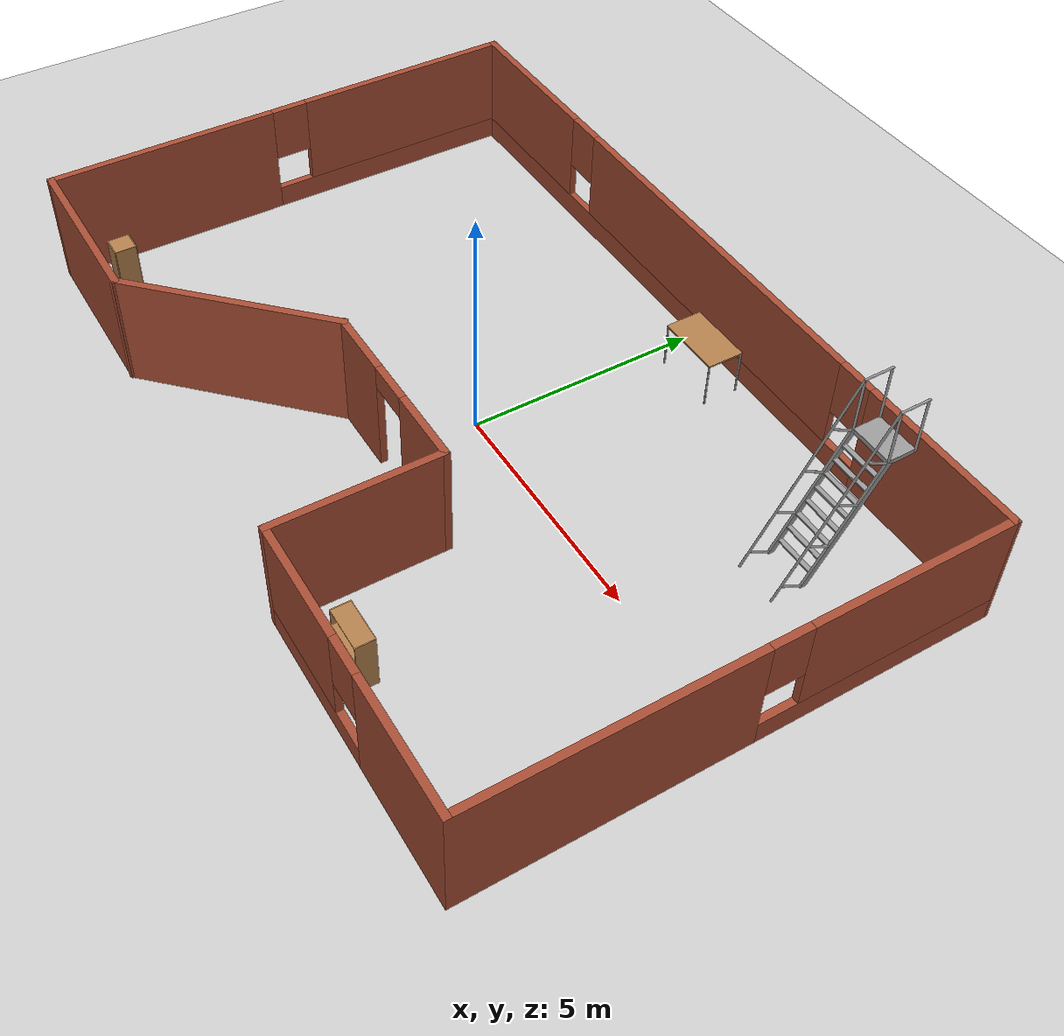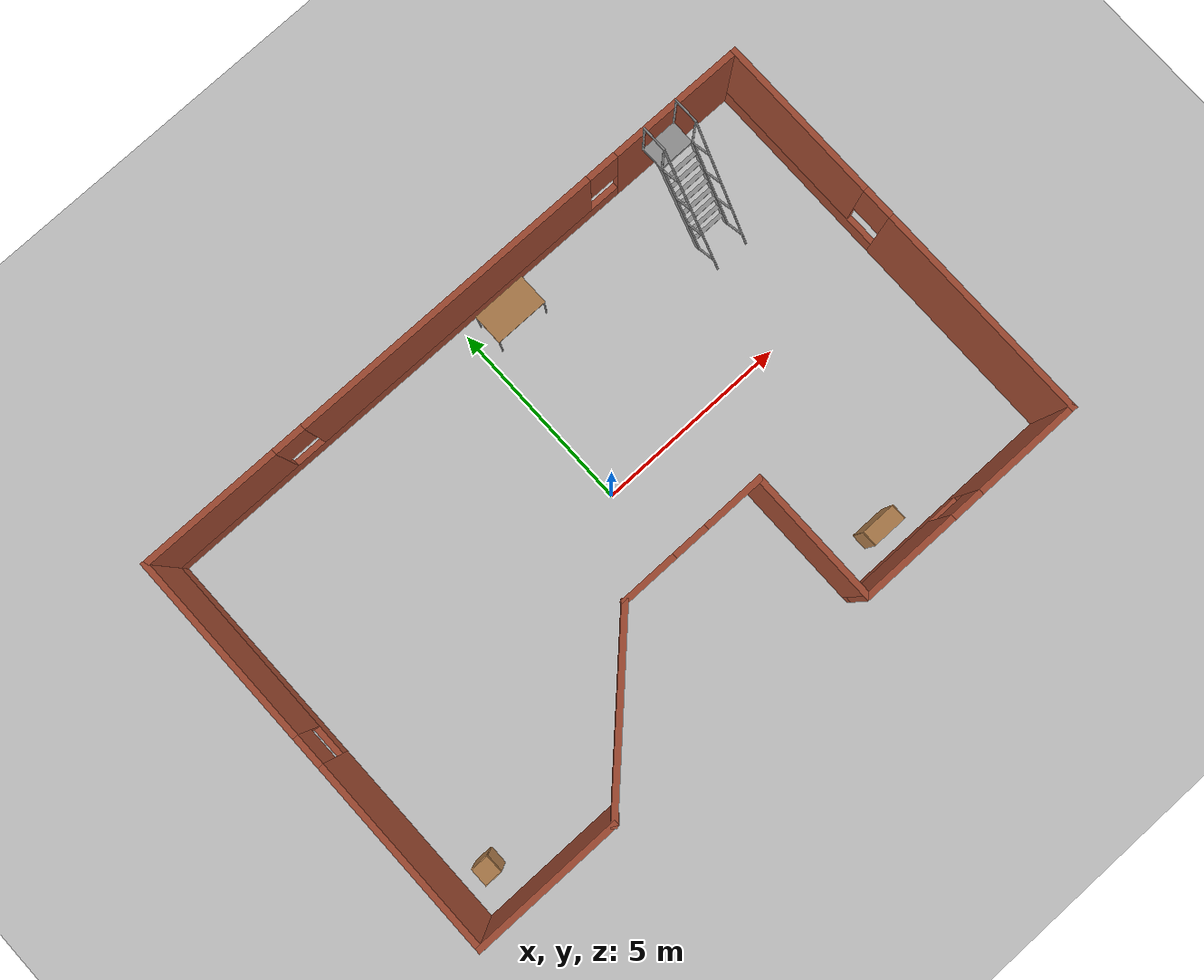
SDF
<sdf version="1.6">
 <world name="default">
  <light name="sun" type="directional">
   <pose>0 0 15 0 -0 0</pose>
   <diffuse>1 1 1 1</diffuse>
   <specular>0.1 0.1 0.1 1</specular>
   <attenuation>
    <range>1000</range>
    <constant>0.9</constant>
    <linear>0.01</linear>
    <quadratic>0.001</quadratic>
   </attenuation>
   <direction>-0.5 0.5 -1</direction>
  </light>
  <model name="ground_plane">
   <static>1</static>
   <link name="link">
    <collision name="collision">
     <geometry><plane><normal>0 0 1</normal><size>100 100</size></plane></geometry>
     <surface><friction><ode><mu>100</mu><mu2>50</mu2></ode></friction></surface>
    </collision>
    <visual name="visual">
     <transparency>1</transparency>
     <cast_shadows>0</cast_shadows>
     <geometry><plane><normal>0 0 1</normal><size>100 100</size></plane></geometry>
     <material>
      <script><uri>file://media/materials/scripts/gazebo.material</uri><name>Gazebo/Grey</name></script>
     </material>
    </visual>
   </link>
  </model>
  <gravity>0 0 -9.8</gravity>
  <magnetic_field>6e-06 2.3e-05 -4.2e-05</magnetic_field>
  <atmosphere type="adiabatic"/>
  <physics name="default_physics" default="0" type="ode">
   <max_step_size>0.001</max_step_size>
   <real_time_factor>1</real_time_factor>
   <real_time_update_rate>1000</real_time_update_rate>
  </physics>
  <scene><ambient>0.4 0.4 0.4 1</ambient><background>0.7 0.7 0.7 1</background><shadows>1</shadows></scene>
  <spherical_coordinates>
   <surface_model>EARTH_WGS84</surface_model>
   <latitude_deg>0</latitude_deg>
   <longitude_deg>0</longitude_deg>
   <elevation>0</elevation>
   <heading_deg>0</heading_deg>
  </spherical_coordinates>
  <model name="Room">
   <link name="Wall_40">
    <pose>5.40315 -5.34887 0 0 -0 3.14159</pose>
    <visual name="Wall_40_Visual_0">
     <pose>-1.67493 0 1.25 0 -0 0</pose>
     <geometry><box><size>2.77319 0.15 2.5</size></box></geometry>
     <material>
      <script><uri>file://media/materials/scripts/gazebo.material</uri><name>Gazebo/Bricks</name></script>
      <ambient>1 1 1 1</ambient>
     </material>
    </visual>
    <collision name="Wall_40_Collision_0">
     <geometry><box><size>2.77319 0.15 2.5</size></box></geometry>
     <pose>-1.67493 0 1.25 0 -0 0</pose>
    </collision>
    <visual name="Wall_40_Visual_1">
     <pose>1.3866 0 0.25 0 -0 0</pose>
     <geometry><box><size>3.34986 0.15 0.5</size></box></geometry>
     <material>
      <script><uri>file://media/materials/scripts/gazebo.material</uri><name>Gazebo/Bricks</name></script>
      <ambient>1 1 1 1</ambient>
     </material>
    </visual>
    <collision name="Wall_40_Collision_1">
     <geometry><box><size>3.34986 0.15 0.5</size></box></geometry>
     <pose>1.3866 0 0.25 0 -0 0</pose>
    </collision>
    <visual name="Wall_40_Visual_2">
     <pose>1.7866 0 1.5 0 -0 0</pose>
     <geometry><box><size>2.54986 0.15 2</size></box></geometry>
     <material>
      <script><uri>file://media/materials/scripts/gazebo.material</uri><name>Gazebo/Bricks</name></script>
      <ambient>1 1 1 1</ambient>
     </material>
    </visual>
    <collision name="Wall_40_Collision_2">
     <geometry><box><size>2.54986 0.15 2</size></box></geometry>
     <pose>1.7866 0 1.5 0 -0 0</pose>
    </collision>
    <visual name="Wall_40_Visual_3">
     <pose>0.111665 0 1.9 0 -0 0</pose>
     <geometry><box><size>0.8 0.15 1.2</size></box></geometry>
     <material>
      <script><uri>file://media/materials/scripts/gazebo.material</uri><name>Gazebo/Bricks</name></script>
      <ambient>1 1 1 1</ambient>
     </material>
    </visual>
    <collision name="Wall_40_Collision_3">
     <geometry><box><size>0.8 0.15 1.2</size></box></geometry>
     <pose>0.111665 0 1.9 0 -0 0</pose>
    </collision>
   </link>
   <link name="Wall_41">
    <collision name="Wall_41_Collision">
     <geometry><box><size>3.5 0.15 2.5</size></box></geometry>
     <pose>0 0 1.25 0 -0 0</pose>
    </collision>
    <visual name="Wall_41_Visual">
     <pose>0 0 1.25 0 -0 0</pose>
     <geometry><box><size>3.5 0.15 2.5</size></box></geometry>
     <material>
      <script><uri>file://media/materials/scripts/gazebo.material</uri><name>Gazebo/Bricks</name></script>
      <ambient>1 1 1 1</ambient>
     </material>
    </visual>
    <pose>2.41662 -3.67387 0 0 -0 1.5708</pose>
   </link>
   <link name="Wall_42">
    <pose>0.491624 -1.99887 0 0 -0 3.14159</pose>
    <visual name="Wall_42_Visual_0">
     <pose>-1.19458 0 1.25 0 -0 0</pose>
     <geometry><box><size>1.61084 0.15 2.5</size></box></geometry>
     <material>
      <script><uri>file://media/materials/scripts/gazebo.material</uri><name>Gazebo/Bricks</name></script>
      <ambient>1 1 1 1</ambient>
     </material>
    </visual>
    <collision name="Wall_42_Collision_0">
     <geometry><box><size>1.61084 0.15 2.5</size></box></geometry>
     <pose>-1.19458 0 1.25 0 -0 0</pose>
    </collision>
    <visual name="Wall_42_Visual_1">
     <pose>1.25542 0 1.25 0 -0 0</pose>
     <geometry><box><size>1.48916 0.15 2.5</size></box></geometry>
     <material>
      <script><uri>file://media/materials/scripts/gazebo.material</uri><name>Gazebo/Bricks</name></script>
      <ambient>1 1 1 1</ambient>
     </material>
    </visual>
    <collision name="Wall_42_Collision_1">
     <geometry><box><size>1.48916 0.15 2.5</size></box></geometry>
     <pose>1.25542 0 1.25 0 -0 0</pose>
    </collision>
    <visual name="Wall_42_Visual_2">
     <pose>0.060839 0 2.25 0 -0 0</pose>
     <geometry><box><size>0.9 0.15 0.5</size></box></geometry>
     <material>
      <script><uri>file://media/materials/scripts/gazebo.material</uri><name>Gazebo/Bricks</name></script>
      <ambient>1 1 1 1</ambient>
     </material>
    </visual>
    <collision name="Wall_42_Collision_2">
     <geometry><box><size>0.9 0.15 0.5</size></box></geometry>
     <pose>0.060839 0 2.25 0 -0 0</pose>
    </collision>
   </link>
   <link name="Wall_43">
    <collision name="Wall_43_Collision">
     <geometry><box><size>4.75 0.15 2.5</size></box></geometry>
     <pose>0 0 1.25 0 -0 0</pose>
    </collision>
    <visual name="Wall_43_Visual">
     <pose>0 0 1.25 0 -0 0</pose>
     <geometry><box><size>4.75 0.15 2.5</size></box></geometry>
     <material>
      <script><uri>file://media/materials/scripts/gazebo.material</uri><name>Gazebo/Bricks</name></script>
      <ambient>1 1 1 1</ambient>
     </material>
    </visual>
    <pose>-3.05972 -3.62522 0 0 0 -2.35619</pose>
   </link>
   <link name="Wall_44">
    <collision name="Wall_44_Collision">
     <geometry><box><size>3.85361 0.15 2.5</size></box></geometry>
     <pose>0 0 1.25 0 -0 0</pose>
    </collision>
    <visual name="Wall_44_Visual">
     <pose>0 0 1.25 0 -0 0</pose>
     <geometry><box><size>3.85361 0.15 2.5</size></box></geometry>
     <material>
      <script><uri>file://media/materials/scripts/gazebo.material</uri><name>Gazebo/Bricks</name></script>
      <ambient>1 1 1 1</ambient>
     </material>
    </visual>
    <pose>-6.53787 -5.25156 0 0 -0 3.14159</pose>
   </link>
   <link name="Wall_48">
    <pose>-8.38968 0.048438 0 0 -0 1.5708</pose>
    <visual name="Wall_48_Visual_0">
     <pose>-2.85071 0 1.25 0 -0 0</pose>
     <geometry><box><size>5.04859 0.15 2.5</size></box></geometry>
     <material>
      <script><uri>file://media/materials/scripts/gazebo.material</uri><name>Gazebo/Bricks</name></script>
      <ambient>1 1 1 1</ambient>
     </material>
    </visual>
    <collision name="Wall_48_Collision_0">
     <geometry><box><size>5.04859 0.15 2.5</size></box></geometry>
     <pose>-2.85071 0 1.25 0 -0 0</pose>
    </collision>
    <visual name="Wall_48_Visual_1">
     <pose>2.52429 0 0.25 0 -0 0</pose>
     <geometry><box><size>5.70141 0.15 0.5</size></box></geometry>
     <material>
      <script><uri>file://media/materials/scripts/gazebo.material</uri><name>Gazebo/Bricks</name></script>
      <ambient>1 1 1 1</ambient>
     </material>
    </visual>
    <collision name="Wall_48_Collision_1">
     <geometry><box><size>5.70141 0.15 0.5</size></box></geometry>
     <pose>2.52429 0 0.25 0 -0 0</pose>
    </collision>
    <visual name="Wall_48_Visual_2">
     <pose>2.92429 0 1.5 0 -0 0</pose>
     <geometry><box><size>4.90141 0.15 2</size></box></geometry>
     <material>
      <script><uri>file://media/materials/scripts/gazebo.material</uri><name>Gazebo/Bricks</name></script>
      <ambient>1 1 1 1</ambient>
     </material>
    </visual>
    <collision name="Wall_48_Collision_2">
     <geometry><box><size>4.90141 0.15 2</size></box></geometry>
     <pose>2.92429 0 1.5 0 -0 0</pose>
    </collision>
    <visual name="Wall_48_Visual_3">
     <pose>0.073586 0 1.9 0 -0 0</pose>
     <geometry><box><size>0.8 0.15 1.2</size></box></geometry>
     <material>
      <script><uri>file://media/materials/scripts/gazebo.material</uri><name>Gazebo/Bricks</name></script>
      <ambient>1 1 1 1</ambient>
     </material>
    </visual>
    <collision name="Wall_48_Collision_3">
     <geometry><box><size>0.8 0.15 1.2</size></box></geometry>
     <pose>0.073586 0 1.9 0 -0 0</pose>
    </collision>
   </link>
   <link name="Wall_52">
    <pose>8.38968 -0.048871 0 0 -0 1.5708</pose>
    <visual name="Wall_52_Visual_0">
     <pose>-2.52518 0 1.25 0 -0 0</pose>
     <geometry><box><size>5.69965 0.15 2.5</size></box></geometry>
     <material>
      <script><uri>file://media/materials/scripts/gazebo.material</uri><name>Gazebo/Bricks</name></script>
      <ambient>1 1 1 1</ambient>
     </material>
    </visual>
    <collision name="Wall_52_Collision_0">
     <geometry><box><size>5.69965 0.15 2.5</size></box></geometry>
     <pose>-2.52518 0 1.25 0 -0 0</pose>
    </collision>
    <visual name="Wall_52_Visual_1">
     <pose>2.84982 0 0.25 0 -0 0</pose>
     <geometry><box><size>5.05035 0.15 0.5</size></box></geometry>
     <material>
      <script><uri>file://media/materials/scripts/gazebo.material</uri><name>Gazebo/Bricks</name></script>
      <ambient>1 1 1 1</ambient>
     </material>
    </visual>
    <collision name="Wall_52_Collision_1">
     <geometry><box><size>5.05035 0.15 0.5</size></box></geometry>
     <pose>2.84982 0 0.25 0 -0 0</pose>
    </collision>
    <visual name="Wall_52_Visual_2">
     <pose>3.24982 0 1.5 0 -0 0</pose>
     <geometry><box><size>4.25035 0.15 2</size></box></geometry>
     <material>
      <script><uri>file://media/materials/scripts/gazebo.material</uri><name>Gazebo/Bricks</name></script>
      <ambient>1 1 1 1</ambient>
     </material>
    </visual>
    <collision name="Wall_52_Collision_2">
     <geometry><box><size>4.25035 0.15 2</size></box></geometry>
     <pose>3.24982 0 1.5 0 -0 0</pose>
    </collision>
    <visual name="Wall_52_Visual_3">
     <pose>0.724645 0 1.9 0 -0 0</pose>
     <geometry><box><size>0.8 0.15 1.2</size></box></geometry>
     <material>
      <script><uri>file://media/materials/scripts/gazebo.material</uri><name>Gazebo/Bricks</name></script>
      <ambient>1 1 1 1</ambient>
     </material>
    </visual>
    <collision name="Wall_52_Collision_3">
     <geometry><box><size>0.8 0.15 1.2</size></box></geometry>
     <pose>0.724645 0 1.9 0 -0 0</pose>
    </collision>
   </link>
   <link name="Wall_53">
    <pose>0 5.29978 0 0 -0 3.13579</pose>
    <visual name="Wall_53_Visual_0">
     <pose>-6.67821 0 1.25 0 -0 0</pose>
     <geometry><box><size>3.57322 0.15 2.5</size></box></geometry>
     <material>
      <script><uri>file://media/materials/scripts/gazebo.material</uri><name>Gazebo/Bricks</name></script>
      <ambient>1 1 1 1</ambient>
     </material>
    </visual>
    <collision name="Wall_53_Collision_0">
     <geometry><box><size>3.57322 0.15 2.5</size></box></geometry>
     <pose>-6.67821 0 1.25 0 -0 0</pose>
    </collision>
    <visual name="Wall_53_Visual_1">
     <pose>1.78661 0 0.25 0 -0 0</pose>
     <geometry><box><size>13.3564 0.15 0.5</size></box></geometry>
     <material>
      <script><uri>file://media/materials/scripts/gazebo.material</uri><name>Gazebo/Bricks</name></script>
      <ambient>1 1 1 1</ambient>
     </material>
    </visual>
    <collision name="Wall_53_Collision_1">
     <geometry><box><size>13.3564 0.15 0.5</size></box></geometry>
     <pose>1.78661 0 0.25 0 -0 0</pose>
    </collision>
    <visual name="Wall_53_Visual_2">
     <pose>-0.031443 0 1.5 0 -0 0</pose>
     <geometry><box><size>8.12032 0.15 2</size></box></geometry>
     <material>
      <script><uri>file://media/materials/scripts/gazebo.material</uri><name>Gazebo/Bricks</name></script>
      <ambient>1 1 1 1</ambient>
     </material>
    </visual>
    <collision name="Wall_53_Collision_2">
     <geometry><box><size>8.12032 0.15 2</size></box></geometry>
     <pose>-0.031443 0 1.5 0 -0 0</pose>
    </collision>
    <visual name="Wall_53_Visual_3">
     <pose>6.64677 0 1.5 0 -0 0</pose>
     <geometry><box><size>3.6361 0.15 2</size></box></geometry>
     <material>
      <script><uri>file://media/materials/scripts/gazebo.material</uri><name>Gazebo/Bricks</name></script>
      <ambient>1 1 1 1</ambient>
     </material>
    </visual>
    <collision name="Wall_53_Collision_3">
     <geometry><box><size>3.6361 0.15 2</size></box></geometry>
     <pose>6.64677 0 1.5 0 -0 0</pose>
    </collision>
    <visual name="Wall_53_Visual_4">
     <pose>-4.4916 0 1.9 0 -0 0</pose>
     <geometry><box><size>0.8 0.15 1.2</size></box></geometry>
     <material>
      <script><uri>file://media/materials/scripts/gazebo.material</uri><name>Gazebo/Bricks</name></script>
      <ambient>1 1 1 1</ambient>
     </material>
    </visual>
    <collision name="Wall_53_Collision_4">
     <geometry><box><size>0.8 0.15 1.2</size></box></geometry>
     <pose>-4.4916 0 1.9 0 -0 0</pose>
    </collision>
    <visual name="Wall_53_Visual_5">
     <pose>4.42872 0 1.9 0 -0 0</pose>
     <geometry><box><size>0.8 0.15 1.2</size></box></geometry>
     <material>
      <script><uri>file://media/materials/scripts/gazebo.material</uri><name>Gazebo/Bricks</name></script>
      <ambient>1 1 1 1</ambient>
     </material>
    </visual>
    <collision name="Wall_53_Collision_5">
     <geometry><box><size>0.8 0.15 1.2</size></box></geometry>
     <pose>4.42872 0 1.9 0 -0 0</pose>
    </collision>
   </link>
   <static>1</static>
  </model>
  <model name="bookshelf">
   <static>1</static>
   <link name="link">
    <inertial><mass>1</mass></inertial>
    <collision name="back">
     <pose>0 0.005 0.6 0 -0 0</pose>
     <geometry><box><size>0.9 0.01 1.2</size></box></geometry>
    </collision>
    <visual name="visual1">
     <pose>0 0.005 0.6 0 -0 0</pose>
     <geometry><box><size>0.9 0.01 1.2</size></box></geometry>
     <material>
      <script><uri>file://media/materials/scripts/gazebo.material</uri><name>Gazebo/Wood</name></script>
     </material>
    </visual>
    <collision name="left_side">
     <pose>0.45 -0.195 0.6 0 -0 0</pose>
     <geometry><box><size>0.02 0.4 1.2</size></box></geometry>
    </collision>
    <visual name="visual2">
     <pose>0.45 -0.195 0.6 0 -0 0</pose>
     <geometry><box><size>0.02 0.4 1.2</size></box></geometry>
     <material>
      <script><uri>file://media/materials/scripts/gazebo.material</uri><name>Gazebo/Wood</name></script>
     </material>
    </visual>
    <collision name="right_side">
     <pose>-0.45 -0.195 0.6 0 -0 0</pose>
     <geometry><box><size>0.02 0.4 1.2</size></box></geometry>
    </collision>
    <visual name="visual3">
     <pose>-0.45 -0.195 0.6 0 -0 0</pose>
     <geometry><box><size>0.02 0.4 1.2</size></box></geometry>
     <material>
      <script><uri>file://media/materials/scripts/gazebo.material</uri><name>Gazebo/Wood</name></script>
     </material>
    </visual>
    <collision name="bottom">
     <pose>0 -0.195 0.03 0 -0 0</pose>
     <geometry><box><size>0.88 0.4 0.06</size></box></geometry>
    </collision>
    <visual name="visual4">
     <pose>0 -0.195 0.03 0 -0 0</pose>
     <geometry><box><size>0.88 0.4 0.06</size></box></geometry>
     <material>
      <script><uri>file://media/materials/scripts/gazebo.material</uri><name>Gazebo/Wood</name></script>
     </material>
    </visual>
    <collision name="top">
     <pose>0 -0.195 1.19 0 -0 0</pose>
     <geometry><box><size>0.88 0.4 0.02</size></box></geometry>
    </collision>
    <visual name="visual5">
     <pose>0 -0.195 1.19 0 -0 0</pose>
     <geometry><box><size>0.88 0.4 0.02</size></box></geometry>
     <material>
      <script><uri>file://media/materials/scripts/gazebo.material</uri><name>Gazebo/Wood</name></script>
     </material>
    </visual>
    <collision name="low_shelf">
     <pose>0 -0.195 0.43 0 -0 0</pose>
     <geometry><box><size>0.88 0.4 0.02</size></box></geometry>
    </collision>
    <visual name="visual6">
     <pose>0 -0.195 0.43 0 -0 0</pose>
     <geometry><box><size>0.88 0.4 0.02</size></box></geometry>
     <material>
      <script><uri>file://media/materials/scripts/gazebo.material</uri><name>Gazebo/Wood</name></script>
     </material>
    </visual>
    <collision name="high_shelf">
     <pose>0 -0.195 0.8 0 -0 0</pose>
     <geometry><box><size>0.88 0.4 0.02</size></box></geometry>
    </collision>
    <visual name="visual7">
     <pose>0 -0.195 0.8 0 -0 0</pose>
     <geometry><box><size>0.88 0.4 0.02</size></box></geometry>
     <material>
      <script><uri>file://media/materials/scripts/gazebo.material</uri><name>Gazebo/Wood</name></script>
     </material>
    </visual>
   </link>
   <pose>3.94809 -4.41012 0 0 -0 0</pose>
  </model>
  <model name="cabinet">
   <static>1</static>
   <link name="cabinet_bottom_plate">
    <inertial>
     <pose>0 0 -1 0 -0 0</pose>
     <inertia><ixx>2.05</ixx><ixy>0</ixy><ixz>0</ixz><iyy>2.05</iyy><iyz>0</iyz><izz>2.05</izz></inertia>
     <mass>25</mass>
    </inertial>
    <collision name="cabinet_bottom_plate_geom">
     <pose>0 0 0.01 0 -0 0</pose>
     <geometry><box><size>0.45 0.45 0.02</size></box></geometry>
    </collision>
    <visual name="cabinet_bottom_plate_geom_visual">
     <pose>0 0 0.01 0 -0 0</pose>
     <geometry><box><size>0.45 0.45 0.02</size></box></geometry>
     <material>
      <script><uri>file://media/materials/scripts/gazebo.material</uri><name>Gazebo/Wood</name></script>
     </material>
    </visual>
    <collision name="cabinet_bottom_plate_geom_cabinet_back_plate">
     <pose>0.235 0 0.51 0 -0 0</pose>
     <geometry><box><size>0.02 0.45 1.02</size></box></geometry>
    </collision>
    <visual name="cabinet_bottom_plate_geom_cabinet_back_plate_visual">
     <pose>0.235 0 0.51 0 -0 0</pose>
     <geometry><box><size>0.02 0.45 1.02</size></box></geometry>
     <material>
      <script><uri>file://media/materials/scripts/gazebo.material</uri><name>Gazebo/Wood</name></script>
     </material>
    </visual>
    <collision name="cabinet_bottom_plate_geom_cabinet_left_plate">
     <pose>0 0.235 0.51 0 -0 0</pose>
     <geometry><box><size>0.45 0.02 1.02</size></box></geometry>
    </collision>
    <visual name="cabinet_bottom_plate_geom_cabinet_left_plate_visual">
     <pose>0 0.235 0.51 0 -0 0</pose>
     <geometry><box><size>0.45 0.02 1.02</size></box></geometry>
     <material>
      <script><uri>file://media/materials/scripts/gazebo.material</uri><name>Gazebo/Wood</name></script>
     </material>
    </visual>
    <collision name="cabinet_bottom_plate_geom_cabinet_middle_plate">
     <pose>0 0 0.51 0 -0 0</pose>
     <geometry><box><size>0.45 0.45 0.02</size></box></geometry>
    </collision>
    <visual name="cabinet_bottom_plate_geom_cabinet_middle_plate_visual">
     <pose>0 0 0.51 0 -0 0</pose>
     <geometry><box><size>0.45 0.45 0.02</size></box></geometry>
     <material>
      <script><uri>file://media/materials/scripts/gazebo.material</uri><name>Gazebo/Wood</name></script>
     </material>
    </visual>
    <collision name="cabinet_bottom_plate_geom_cabinet_right_plate">
     <pose>0 -0.235 0.51 0 -0 0</pose>
     <geometry><box><size>0.45 0.02 1.02</size></box></geometry>
    </collision>
    <visual name="cabinet_bottom_plate_geom_cabinet_right_plate_visual">
     <pose>0 -0.235 0.51 0 -0 0</pose>
     <geometry><box><size>0.45 0.02 1.02</size></box></geometry>
     <material>
      <script><uri>file://media/materials/scripts/gazebo.material</uri><name>Gazebo/Wood</name></script>
     </material>
    </visual>
    <collision name="cabinet_bottom_plate_geom_cabinet_top_plate">
     <pose>0 0 1.01 0 -0 0</pose>
     <geometry><box><size>0.45 0.45 0.02</size></box></geometry>
    </collision>
    <visual name="cabinet_bottom_plate_geom_cabinet_top_plate_visual">
     <pose>0 0 1.01 0 -0 0</pose>
     <geometry><box><size>0.45 0.45 0.02</size></box></geometry>
     <material>
      <script><uri>file://media/materials/scripts/gazebo.material</uri><name>Gazebo/Wood</name></script>
     </material>
    </visual>
   </link>
   <pose>-7.55063 -4.28542 0 0 -0 0</pose>
  </model>
  <model name="table_0">
   <static>0</static>
   <link name="link">
    <collision name="surface">
     <pose>0 0 1 0 -0 0</pose>
     <geometry><box><size>1.5 0.8 0.03</size></box></geometry>
     <surface><friction><ode><mu>0.6</mu><mu2>0.6</mu2></ode></friction></surface>
    </collision>
    <visual name="visual1">
     <pose>0 0 1 0 -0 0</pose>
     <geometry><box><size>1.4 0.8 0.04</size></box></geometry>
     <material>
      <script><uri>file://media/materials/scripts/gazebo.material</uri><name>Gazebo/Wood</name></script>
     </material>
    </visual>
    <collision name="front_left_leg">
     <pose>0.68 0.38 0.5 0 -0 0</pose>
     <geometry><cylinder><radius>0.02</radius><length>1</length></cylinder></geometry>
    </collision>
    <visual name="front_left_leg">
     <pose>0.68 0.38 0.5 0 -0 0</pose>
     <geometry><cylinder><radius>0.02</radius><length>1</length></cylinder></geometry>
     <material>
      <script><uri>file://media/materials/scripts/gazebo.material</uri><name>Gazebo/Grey</name></script>
     </material>
    </visual>
    <collision name="front_right_leg">
     <pose>0.68 -0.38 0.5 0 -0 0</pose>
     <geometry><cylinder><radius>0.02</radius><length>1</length></cylinder></geometry>
    </collision>
    <visual name="front_right_leg">
     <pose>0.68 -0.38 0.5 0 -0 0</pose>
     <geometry><cylinder><radius>0.02</radius><length>1</length></cylinder></geometry>
     <material>
      <script><uri>file://media/materials/scripts/gazebo.material</uri><name>Gazebo/Grey</name></script>
     </material>
    </visual>
    <collision name="back_right_leg">
     <pose>-0.68 -0.38 0.5 0 -0 0</pose>
     <geometry><cylinder><radius>0.02</radius><length>1</length></cylinder></geometry>
    </collision>
    <visual name="back_right_leg">
     <pose>-0.68 -0.38 0.5 0 -0 0</pose>
     <geometry><cylinder><radius>0.02</radius><length>1</length></cylinder></geometry>
     <material>
      <script><uri>file://media/materials/scripts/gazebo.material</uri><name>Gazebo/Grey</name></script>
     </material>
    </visual>
    <collision name="back_left_leg">
     <pose>-0.68 0.38 0.5 0 -0 0</pose>
     <geometry><cylinder><radius>0.02</radius><length>1</length></cylinder></geometry>
    </collision>
    <visual name="back_left_leg">
     <pose>-0.68 0.38 0.5 0 -0 0</pose>
     <geometry><cylinder><radius>0.02</radius><length>1</length></cylinder></geometry>
     <material>
      <script><uri>file://media/materials/scripts/gazebo.material</uri><name>Gazebo/Grey</name></script>
     </material>
    </visual>
    <inertial>
     <inertia><ixx>1</ixx><ixy>0</ixy><ixz>0</ixz><iyy>1</iyy><iyz>0</iyz><izz>1</izz></inertia>
     <mass>1</mass>
    </inertial>
   </link>
   <pose>1.08045 4.5981 -9e-06 0 -1e-06 0</pose>
  </model>
  <model name="ladder_60deg_2rails_1">
   <static>1</static>
   <link name="step0">
    <pose>0 0.15396 0.266667 0 -0 0</pose>
    <inertial>
     <mass>9.75482</mass>
     <inertia>
      <ixx>0.00957124</ixx>
      <iyy>0.65963</iyy>
      <izz>0.666842</izz>
      <ixy>0</ixy>
      <ixz>0</ixz>
      <iyz>0</iyz>
     </inertia>
    </inertial>
    <collision name="collision"><geometry><box><size>0.9 0.1016 0.0381</size></box></geometry></collision>
    <visual name="visual">
     <geometry><box><size>0.9 0.1016 0.0381</size></box></geometry>
     <material>
      <script><uri>file://media/materials/scripts/gazebo.material</uri><name>Gazebo/Grey</name></script>
     </material>
    </visual>
   </link>
   <link name="step1">
    <pose>0 0.30792 0.533333 0 -0 0</pose>
    <inertial>
     <mass>9.75482</mass>
     <inertia>
      <ixx>0.00957124</ixx>
      <iyy>0.65963</iyy>
      <izz>0.666842</izz>
      <ixy>0</ixy>
      <ixz>0</ixz>
      <iyz>0</iyz>
     </inertia>
    </inertial>
    <collision name="collision"><geometry><box><size>0.9 0.1016 0.0381</size></box></geometry></collision>
    <visual name="visual">
     <geometry><box><size>0.9 0.1016 0.0381</size></box></geometry>
     <material>
      <script><uri>file://media/materials/scripts/gazebo.material</uri><name>Gazebo/Grey</name></script>
     </material>
    </visual>
   </link>
   <link name="step2">
    <pose>0 0.46188 0.8 0 -0 0</pose>
    <inertial>
     <mass>9.75482</mass>
     <inertia>
      <ixx>0.00957124</ixx>
      <iyy>0.65963</iyy>
      <izz>0.666842</izz>
      <ixy>0</ixy>
      <ixz>0</ixz>
      <iyz>0</iyz>
     </inertia>
    </inertial>
    <collision name="collision"><geometry><box><size>0.9 0.1016 0.0381</size></box></geometry></collision>
    <visual name="visual">
     <geometry><box><size>0.9 0.1016 0.0381</size></box></geometry>
     <material>
      <script><uri>file://media/materials/scripts/gazebo.material</uri><name>Gazebo/Grey</name></script>
     </material>
    </visual>
   </link>
   <link name="step3">
    <pose>0 0.61584 1.06667 0 -0 0</pose>
    <inertial>
     <mass>9.75482</mass>
     <inertia>
      <ixx>0.00957124</ixx>
      <iyy>0.65963</iyy>
      <izz>0.666842</izz>
      <ixy>0</ixy>
      <ixz>0</ixz>
      <iyz>0</iyz>
     </inertia>
    </inertial>
    <collision name="collision"><geometry><box><size>0.9 0.1016 0.0381</size></box></geometry></collision>
    <visual name="visual">
     <geometry><box><size>0.9 0.1016 0.0381</size></box></geometry>
     <material>
      <script><uri>file://media/materials/scripts/gazebo.material</uri><name>Gazebo/Grey</name></script>
     </material>
    </visual>
   </link>
   <link name="step4">
    <pose>0 0.7698 1.33333 0 -0 0</pose>
    <inertial>
     <mass>9.75482</mass>
     <inertia>
      <ixx>0.00957124</ixx>
      <iyy>0.65963</iyy>
      <izz>0.666842</izz>
      <ixy>0</ixy>
      <ixz>0</ixz>
      <iyz>0</iyz>
     </inertia>
    </inertial>
    <collision name="collision"><geometry><box><size>0.9 0.1016 0.0381</size></box></geometry></collision>
    <visual name="visual">
     <geometry><box><size>0.9 0.1016 0.0381</size></box></geometry>
     <material>
      <script><uri>file://media/materials/scripts/gazebo.material</uri><name>Gazebo/Grey</name></script>
     </material>
    </visual>
   </link>
   <link name="step5">
    <pose>0 0.92376 1.6 0 -0 0</pose>
    <inertial>
     <mass>9.75482</mass>
     <inertia>
      <ixx>0.00957124</ixx>
      <iyy>0.65963</iyy>
      <izz>0.666842</izz>
      <ixy>0</ixy>
      <ixz>0</ixz>
      <iyz>0</iyz>
     </inertia>
    </inertial>
    <collision name="collision"><geometry><box><size>0.9 0.1016 0.0381</size></box></geometry></collision>
    <visual name="visual">
     <geometry><box><size>0.9 0.1016 0.0381</size></box></geometry>
     <material>
      <script><uri>file://media/materials/scripts/gazebo.material</uri><name>Gazebo/Grey</name></script>
     </material>
    </visual>
   </link>
   <link name="step6">
    <pose>0 1.07772 1.86667 0 -0 0</pose>
    <inertial>
     <mass>9.75482</mass>
     <inertia>
      <ixx>0.00957124</ixx>
      <iyy>0.65963</iyy>
      <izz>0.666842</izz>
      <ixy>0</ixy>
      <ixz>0</ixz>
      <iyz>0</iyz>
     </inertia>
    </inertial>
    <collision name="collision"><geometry><box><size>0.9 0.1016 0.0381</size></box></geometry></collision>
    <visual name="visual">
     <geometry><box><size>0.9 0.1016 0.0381</size></box></geometry>
     <material>
      <script><uri>file://media/materials/scripts/gazebo.material</uri><name>Gazebo/Grey</name></script>
     </material>
    </visual>
   </link>
   <link name="step7">
    <pose>0 1.23168 2.13333 0 -0 0</pose>
    <inertial>
     <mass>9.75482</mass>
     <inertia>
      <ixx>0.00957124</ixx>
      <iyy>0.65963</iyy>
      <izz>0.666842</izz>
      <ixy>0</ixy>
      <ixz>0</ixz>
      <iyz>0</iyz>
     </inertia>
    </inertial>
    <collision name="collision"><geometry><box><size>0.9 0.1016 0.0381</size></box></geometry></collision>
    <visual name="visual">
     <geometry><box><size>0.9 0.1016 0.0381</size></box></geometry>
     <material>
      <script><uri>file://media/materials/scripts/gazebo.material</uri><name>Gazebo/Grey</name></script>
     </material>
    </visual>
   </link>
   <link name="landing">
    <pose>0 1.68564 2.4 0 -0 0</pose>
    <inertial>
     <mass>57.6072</mass>
     <inertia><ixx>1.73518</ixx><iyy>3.89545</iyy><izz>5.6167</izz><ixy>0</ixy><ixz>0</ixz><iyz>0</iyz></inertia>
    </inertial>
    <collision name="collision"><geometry><box><size>0.9 0.6 0.1016</size></box></geometry></collision>
    <visual name="visual">
     <geometry><box><size>0.9 0.6 0.1016</size></box></geometry>
     <material>
      <script><uri>file://media/materials/scripts/gazebo.material</uri><name>Gazebo/Grey</name></script>
     </material>
    </visual>
   </link>
   <link name="left_side_wall">
    <pose>-0.45 0.69282 1.2 1.0472 -0 0</pose>
    <collision name="collision"><geometry><box><size>0.0508 2.85128 0.13</size></box></geometry></collision>
    <visual name="visual">
     <geometry><box><size>0.0508 2.85128 0.13</size></box></geometry>
     <material>
      <script><uri>file://media/materials/scripts/gazebo.material</uri><name>Gazebo/Grey</name></script>
     </material>
    </visual>
   </link>
   <link name="right_side_wall">
    <pose>0.45 0.69282 1.2 1.0472 -0 0</pose>
    <collision name="collision"><geometry><box><size>0.0508 2.85128 0.13</size></box></geometry></collision>
    <visual name="visual">
     <geometry><box><size>0.0508 2.85128 0.13</size></box></geometry>
     <material>
      <script><uri>file://media/materials/scripts/gazebo.material</uri><name>Gazebo/Grey</name></script>
     </material>
    </visual>
   </link>
   <link name="left_railing_long">
    <pose>-0.45 0.34282 1.80622 -0.523599 0 0</pose>
    <collision name="collision">
     <geometry><cylinder><radius>0.02413</radius><length>4.17128</length></cylinder></geometry>
    </collision>
    <visual name="visual">
     <geometry><cylinder><radius>0.02413</radius><length>4.17128</length></cylinder></geometry>
     <material>
      <script><uri>file://media/materials/scripts/gazebo.material</uri><name>Gazebo/Grey</name></script>
     </material>
    </visual>
   </link>
   <link name="left_railing_upright0">
    <pose>-0.45 -0.274963 0.15875 1.0472 -0 0</pose>
    <collision name="collision">
     <geometry><cylinder><radius>0.02413</radius><length>0.541218</length></cylinder></geometry>
    </collision>
    <visual name="visual">
     <geometry><cylinder><radius>0.02413</radius><length>0.541218</length></cylinder></geometry>
     <material>
      <script><uri>file://media/materials/scripts/gazebo.material</uri><name>Gazebo/Grey</name></script>
     </material>
    </visual>
   </link>
   <link name="left_railing_upright1">
    <pose>-0.45 0.186917 0.95875 1.0472 -0 0</pose>
    <collision name="collision">
     <geometry><cylinder><radius>0.02413</radius><length>0.541218</length></cylinder></geometry>
    </collision>
    <visual name="visual">
     <geometry><cylinder><radius>0.02413</radius><length>0.541218</length></cylinder></geometry>
     <material>
      <script><uri>file://media/materials/scripts/gazebo.material</uri><name>Gazebo/Grey</name></script>
     </material>
    </visual>
   </link>
   <link name="left_railing_upright2">
    <pose>-0.45 0.648797 1.75875 1.0472 -0 0</pose>
    <collision name="collision">
     <geometry><cylinder><radius>0.02413</radius><length>0.541218</length></cylinder></geometry>
    </collision>
    <visual name="visual">
     <geometry><cylinder><radius>0.02413</radius><length>0.541218</length></cylinder></geometry>
     <material>
      <script><uri>file://media/materials/scripts/gazebo.material</uri><name>Gazebo/Grey</name></script>
     </material>
    </visual>
   </link>
   <link name="left_railing_upright3">
    <pose>-0.45 1.11068 2.55875 1.0472 -0 0</pose>
    <collision name="collision">
     <geometry><cylinder><radius>0.02413</radius><length>0.541218</length></cylinder></geometry>
    </collision>
    <visual name="visual">
     <geometry><cylinder><radius>0.02413</radius><length>0.541218</length></cylinder></geometry>
     <material>
      <script><uri>file://media/materials/scripts/gazebo.material</uri><name>Gazebo/Grey</name></script>
     </material>
    </visual>
   </link>
   <link name="left_railing_landing_top">
    <pose>-0.45 1.68564 3.61244 1.5708 -0 0</pose>
    <collision name="collision">
     <geometry><cylinder><radius>0.02413</radius><length>0.64826</length></cylinder></geometry>
    </collision>
    <visual name="visual">
     <geometry><cylinder><radius>0.02413</radius><length>0.64826</length></cylinder></geometry>
     <material>
      <script><uri>file://media/materials/scripts/gazebo.material</uri><name>Gazebo/Grey</name></script>
     </material>
    </visual>
   </link>
   <link name="left_railing_landing_upright_0">
    <pose>-0.45 1.38564 3.00622 0 -0 0</pose>
    <collision name="collision">
     <geometry><cylinder><radius>0.02413</radius><length>1.21244</length></cylinder></geometry>
    </collision>
    <visual name="visual">
     <geometry><cylinder><radius>0.02413</radius><length>1.21244</length></cylinder></geometry>
     <material>
      <script><uri>file://media/materials/scripts/gazebo.material</uri><name>Gazebo/Grey</name></script>
     </material>
    </visual>
   </link>
   <link name="left_railing_landing_upright_1">
    <pose>-0.45 1.98564 3.00622 0 -0 0</pose>
    <collision name="collision">
     <geometry><cylinder><radius>0.02413</radius><length>1.21244</length></cylinder></geometry>
    </collision>
    <visual name="visual">
     <geometry><cylinder><radius>0.02413</radius><length>1.21244</length></cylinder></geometry>
     <material>
      <script><uri>file://media/materials/scripts/gazebo.material</uri><name>Gazebo/Grey</name></script>
     </material>
    </visual>
   </link>
   <link name="right_railing_long">
    <pose>0.45 0.34282 1.80622 -0.523599 0 0</pose>
    <collision name="collision">
     <geometry><cylinder><radius>0.02413</radius><length>4.17128</length></cylinder></geometry>
    </collision>
    <visual name="visual">
     <geometry><cylinder><radius>0.02413</radius><length>4.17128</length></cylinder></geometry>
     <material>
      <script><uri>file://media/materials/scripts/gazebo.material</uri><name>Gazebo/Grey</name></script>
     </material>
    </visual>
   </link>
   <link name="right_railing_upright0">
    <pose>0.45 -0.274963 0.15875 1.0472 -0 0</pose>
    <collision name="collision">
     <geometry><cylinder><radius>0.02413</radius><length>0.541218</length></cylinder></geometry>
    </collision>
    <visual name="visual">
     <geometry><cylinder><radius>0.02413</radius><length>0.541218</length></cylinder></geometry>
     <material>
      <script><uri>file://media/materials/scripts/gazebo.material</uri><name>Gazebo/Grey</name></script>
     </material>
    </visual>
   </link>
   <link name="right_railing_upright1">
    <pose>0.45 0.186917 0.95875 1.0472 -0 0</pose>
    <collision name="collision">
     <geometry><cylinder><radius>0.02413</radius><length>0.541218</length></cylinder></geometry>
    </collision>
    <visual name="visual">
     <geometry><cylinder><radius>0.02413</radius><length>0.541218</length></cylinder></geometry>
     <material>
      <script><uri>file://media/materials/scripts/gazebo.material</uri><name>Gazebo/Grey</name></script>
     </material>
    </visual>
   </link>
   <link name="right_railing_upright2">
    <pose>0.45 0.648797 1.75875 1.0472 -0 0</pose>
    <collision name="collision">
     <geometry><cylinder><radius>0.02413</radius><length>0.541218</length></cylinder></geometry>
    </collision>
    <visual name="visual">
     <geometry><cylinder><radius>0.02413</radius><length>0.541218</length></cylinder></geometry>
     <material>
      <script><uri>file://media/materials/scripts/gazebo.material</uri><name>Gazebo/Grey</name></script>
     </material>
    </visual>
   </link>
   <link name="right_railing_upright3">
    <pose>0.45 1.11068 2.55875 1.0472 -0 0</pose>
    <collision name="collision">
     <geometry><cylinder><radius>0.02413</radius><length>0.541218</length></cylinder></geometry>
    </collision>
    <visual name="visual">
     <geometry><cylinder><radius>0.02413</radius><length>0.541218</length></cylinder></geometry>
     <material>
      <script><uri>file://media/materials/scripts/gazebo.material</uri><name>Gazebo/Grey</name></script>
     </material>
    </visual>
   </link>
   <link name="right_railing_landing_top">
    <pose>0.45 1.68564 3.61244 1.5708 -0 0</pose>
    <collision name="collision">
     <geometry><cylinder><radius>0.02413</radius><length>0.64826</length></cylinder></geometry>
    </collision>
    <visual name="visual">
     <geometry><cylinder><radius>0.02413</radius><length>0.64826</length></cylinder></geometry>
     <material>
      <script><uri>file://media/materials/scripts/gazebo.material</uri><name>Gazebo/Grey</name></script>
     </material>
    </visual>
   </link>
   <link name="right_railing_landing_upright_0">
    <pose>0.45 1.38564 3.00622 0 -0 0</pose>
    <collision name="collision">
     <geometry><cylinder><radius>0.02413</radius><length>1.21244</length></cylinder></geometry>
    </collision>
    <visual name="visual">
     <geometry><cylinder><radius>0.02413</radius><length>1.21244</length></cylinder></geometry>
     <material>
      <script><uri>file://media/materials/scripts/gazebo.material</uri><name>Gazebo/Grey</name></script>
     </material>
    </visual>
   </link>
   <link name="right_railing_landing_upright_1">
    <pose>0.45 1.98564 3.00622 0 -0 0</pose>
    <collision name="collision">
     <geometry><cylinder><radius>0.02413</radius><length>1.21244</length></cylinder></geometry>
    </collision>
    <visual name="visual">
     <geometry><cylinder><radius>0.02413</radius><length>1.21244</length></cylinder></geometry>
     <material>
      <script><uri>file://media/materials/scripts/gazebo.material</uri><name>Gazebo/Grey</name></script>
     </material>
    </visual>
   </link>
   <pose>5.88367 2.99118 0 0 -0 0</pose>
  </model>
 </world>
</sdf>
